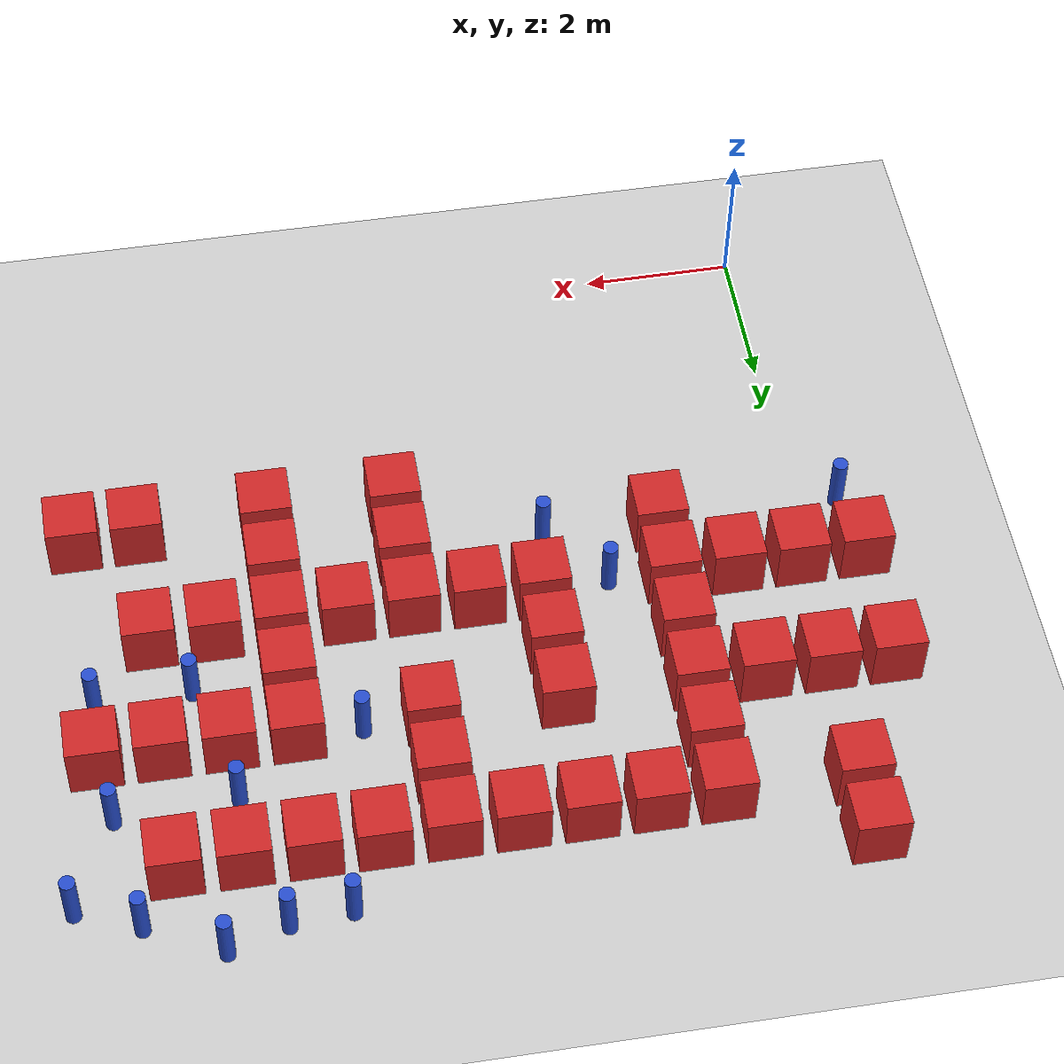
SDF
<sdf version="1.6">
 <world name="default">
  <model name="ground_plane">
   <static>1</static>
   <link name="link">
    <collision name="collision">
     <geometry><plane><normal>0 0 1</normal><size>100 100</size></plane></geometry>
     <surface><friction><ode><mu>100</mu><mu2>50</mu2></ode></friction></surface>
    </collision>
    <visual name="visual">
     <cast_shadows>0</cast_shadows>
     <geometry><plane><normal>0 0 1</normal><size>100 100</size></plane></geometry>
     <material>
      <script><uri>file://media/materials/scripts/gazebo.material</uri><name>Gazebo/Grey</name></script>
     </material>
    </visual>
   </link>
  </model>
  <model name="box_obstacle110">
   <static>0</static>
   <link name="link">
    <pose>0 0 0.1 0 -0 0</pose>
    <inertial>
     <mass>100</mass>
     <inertia>
      <ixx>0.166667</ixx>
      <ixy>0</ixy>
      <ixz>0</ixz>
      <iyy>0.166667</iyy>
      <iyz>0</iyz>
      <izz>0.166667</izz>
     </inertia>
    </inertial>
    <collision name="collision"><geometry><box><size>0.675 0.675 0.8</size></box></geometry></collision>
    <visual name="visual">
     <geometry><box><size>0.675 0.675 0.8</size></box></geometry>
     <material>
      <script><name>Gazebo/Red</name><uri>file://media/materials/scripts/gazebo.material</uri></script>
     </material>
    </visual>
   </link>
   <pose>-0.65097 5.29865 0.299996 4e-06 -0 0.001125</pose>
  </model>
  <model name="box_obstacle111">
   <static>0</static>
   <link name="link">
    <pose>0 0 0.1 0 -0 0</pose>
    <inertial>
     <mass>100</mass>
     <inertia>
      <ixx>0.166667</ixx>
      <ixy>0</ixy>
      <ixz>0</ixz>
      <iyy>0.166667</iyy>
      <iyz>0</iyz>
      <izz>0.166667</izz>
     </inertia>
    </inertial>
    <collision name="collision"><geometry><box><size>0.675 0.675 0.8</size></box></geometry></collision>
    <visual name="visual">
     <geometry><box><size>0.675 0.675 0.8</size></box></geometry>
     <material>
      <script><name>Gazebo/Red</name><uri>file://media/materials/scripts/gazebo.material</uri></script>
     </material>
    </visual>
   </link>
   <pose>-0.65097 6.99865 0.299996 4e-06 -0 0.001125</pose>
  </model>
  <model name="box_obstacle123">
   <static>0</static>
   <link name="link">
    <pose>0 0 0.1 0 -0 0</pose>
    <inertial>
     <mass>100</mass>
     <inertia>
      <ixx>0.166667</ixx>
      <ixy>0</ixy>
      <ixz>0</ixz>
      <iyy>0.166667</iyy>
      <iyz>0</iyz>
      <izz>0.166667</izz>
     </inertia>
    </inertial>
    <collision name="collision"><geometry><box><size>0.675 0.675 0.8</size></box></geometry></collision>
    <visual name="visual">
     <geometry><box><size>0.675 0.675 0.8</size></box></geometry>
     <material>
      <script><name>Gazebo/Red</name><uri>file://media/materials/scripts/gazebo.material</uri></script>
     </material>
    </visual>
   </link>
   <pose>0.19903 5.29865 0.299996 4e-06 -0 0.001125</pose>
  </model>
  <model name="box_obstacle124">
   <static>0</static>
   <link name="link">
    <pose>0 0 0.1 0 -0 0</pose>
    <inertial>
     <mass>100</mass>
     <inertia>
      <ixx>0.166667</ixx>
      <ixy>0</ixy>
      <ixz>0</ixz>
      <iyy>0.166667</iyy>
      <iyz>0</iyz>
      <izz>0.166667</izz>
     </inertia>
    </inertial>
    <collision name="collision"><geometry><box><size>0.675 0.675 0.8</size></box></geometry></collision>
    <visual name="visual">
     <geometry><box><size>0.675 0.675 0.8</size></box></geometry>
     <material>
      <script><name>Gazebo/Red</name><uri>file://media/materials/scripts/gazebo.material</uri></script>
     </material>
    </visual>
   </link>
   <pose>0.19903 6.99865 0.299996 4e-06 -0 0.001125</pose>
  </model>
  <model name="box_obstacle125">
   <static>0</static>
   <link name="link">
    <pose>0 0 0.1 0 -0 0</pose>
    <inertial>
     <mass>100</mass>
     <inertia>
      <ixx>0.166667</ixx>
      <ixy>0</ixy>
      <ixz>0</ixz>
      <iyy>0.166667</iyy>
      <iyz>0</iyz>
      <izz>0.166667</izz>
     </inertia>
    </inertial>
    <collision name="collision"><geometry><box><size>0.675 0.675 0.8</size></box></geometry></collision>
    <visual name="visual">
     <geometry><box><size>0.675 0.675 0.8</size></box></geometry>
     <material>
      <script><name>Gazebo/Red</name><uri>file://media/materials/scripts/gazebo.material</uri></script>
     </material>
    </visual>
   </link>
   <pose>0.19903 8.69865 0.299996 4e-06 -0 0.001125</pose>
  </model>
  <model name="box_obstacle126">
   <static>0</static>
   <link name="link">
    <pose>0 0 0.1 0 -0 0</pose>
    <inertial>
     <mass>100</mass>
     <inertia>
      <ixx>0.166667</ixx>
      <ixy>0</ixy>
      <ixz>0</ixz>
      <iyy>0.166667</iyy>
      <iyz>0</iyz>
      <izz>0.166667</izz>
     </inertia>
    </inertial>
    <collision name="collision"><geometry><box><size>0.675 0.675 0.8</size></box></geometry></collision>
    <visual name="visual">
     <geometry><box><size>0.675 0.675 0.8</size></box></geometry>
     <material>
      <script><name>Gazebo/Red</name><uri>file://media/materials/scripts/gazebo.material</uri></script>
     </material>
    </visual>
   </link>
   <pose>0.19903 9.54865 0.299996 4e-06 -0 0.001125</pose>
  </model>
  <model name="box_obstacle131">
   <static>0</static>
   <link name="link">
    <pose>0 0 0.1 0 -0 0</pose>
    <inertial>
     <mass>100</mass>
     <inertia>
      <ixx>0.166667</ixx>
      <ixy>0</ixy>
      <ixz>0</ixz>
      <iyy>0.166667</iyy>
      <iyz>0</iyz>
      <izz>0.166667</izz>
     </inertia>
    </inertial>
    <collision name="collision"><geometry><box><size>0.675 0.675 0.8</size></box></geometry></collision>
    <visual name="visual">
     <geometry><box><size>0.675 0.675 0.8</size></box></geometry>
     <material>
      <script><name>Gazebo/Red</name><uri>file://media/materials/scripts/gazebo.material</uri></script>
     </material>
    </visual>
   </link>
   <pose>1.04903 5.29865 0.299996 4e-06 -0 0.001125</pose>
  </model>
  <model name="box_obstacle132">
   <static>0</static>
   <link name="link">
    <pose>0 0 0.1 0 -0 0</pose>
    <inertial>
     <mass>100</mass>
     <inertia>
      <ixx>0.166667</ixx>
      <ixy>0</ixy>
      <ixz>0</ixz>
      <iyy>0.166667</iyy>
      <iyz>0</iyz>
      <izz>0.166667</izz>
     </inertia>
    </inertial>
    <collision name="collision"><geometry><box><size>0.675 0.675 0.8</size></box></geometry></collision>
    <visual name="visual">
     <geometry><box><size>0.675 0.675 0.8</size></box></geometry>
     <material>
      <script><name>Gazebo/Red</name><uri>file://media/materials/scripts/gazebo.material</uri></script>
     </material>
    </visual>
   </link>
   <pose>1.04903 6.99865 0.299996 4e-06 -0 0.001125</pose>
  </model>
  <model name="box_obstacle142">
   <static>0</static>
   <link name="link">
    <pose>0 0 0.1 0 -0 0</pose>
    <inertial>
     <mass>100</mass>
     <inertia>
      <ixx>0.166667</ixx>
      <ixy>0</ixy>
      <ixz>0</ixz>
      <iyy>0.166667</iyy>
      <iyz>0</iyz>
      <izz>0.166667</izz>
     </inertia>
    </inertial>
    <collision name="collision"><geometry><box><size>0.675 0.675 0.8</size></box></geometry></collision>
    <visual name="visual">
     <geometry><box><size>0.675 0.675 0.8</size></box></geometry>
     <material>
      <script><name>Gazebo/Red</name><uri>file://media/materials/scripts/gazebo.material</uri></script>
     </material>
    </visual>
   </link>
   <pose>1.89903 4.44865 0.299996 4e-06 -0 0.001125</pose>
  </model>
  <model name="box_obstacle143">
   <static>0</static>
   <link name="link">
    <pose>0 0 0.1 0 -0 0</pose>
    <inertial>
     <mass>100</mass>
     <inertia>
      <ixx>0.166667</ixx>
      <ixy>0</ixy>
      <ixz>0</ixz>
      <iyy>0.166667</iyy>
      <iyz>0</iyz>
      <izz>0.166667</izz>
     </inertia>
    </inertial>
    <collision name="collision"><geometry><box><size>0.675 0.675 0.8</size></box></geometry></collision>
    <visual name="visual">
     <geometry><box><size>0.675 0.675 0.8</size></box></geometry>
     <material>
      <script><name>Gazebo/Red</name><uri>file://media/materials/scripts/gazebo.material</uri></script>
     </material>
    </visual>
   </link>
   <pose>1.89903 5.29865 0.299996 4e-06 -0 0.001125</pose>
  </model>
  <model name="box_obstacle144">
   <static>0</static>
   <link name="link">
    <pose>0 0 0.1 0 -0 0</pose>
    <inertial>
     <mass>100</mass>
     <inertia>
      <ixx>0.166667</ixx>
      <ixy>0</ixy>
      <ixz>0</ixz>
      <iyy>0.166667</iyy>
      <iyz>0</iyz>
      <izz>0.166667</izz>
     </inertia>
    </inertial>
    <collision name="collision"><geometry><box><size>0.675 0.675 0.8</size></box></geometry></collision>
    <visual name="visual">
     <geometry><box><size>0.675 0.675 0.8</size></box></geometry>
     <material>
      <script><name>Gazebo/Red</name><uri>file://media/materials/scripts/gazebo.material</uri></script>
     </material>
    </visual>
   </link>
   <pose>1.89903 6.14865 0.299996 4e-06 -0 0.001125</pose>
  </model>
  <model name="box_obstacle145">
   <static>0</static>
   <link name="link">
    <pose>0 0 0.1 0 -0 0</pose>
    <inertial>
     <mass>100</mass>
     <inertia>
      <ixx>0.166667</ixx>
      <ixy>0</ixy>
      <ixz>0</ixz>
      <iyy>0.166667</iyy>
      <iyz>0</iyz>
      <izz>0.166667</izz>
     </inertia>
    </inertial>
    <collision name="collision"><geometry><box><size>0.675 0.675 0.8</size></box></geometry></collision>
    <visual name="visual">
     <geometry><box><size>0.675 0.675 0.8</size></box></geometry>
     <material>
      <script><name>Gazebo/Red</name><uri>file://media/materials/scripts/gazebo.material</uri></script>
     </material>
    </visual>
   </link>
   <pose>1.89903 6.99865 0.299996 4e-06 -0 0.001125</pose>
  </model>
  <model name="box_obstacle146">
   <static>0</static>
   <link name="link">
    <pose>0 0 0.1 0 -0 0</pose>
    <inertial>
     <mass>100</mass>
     <inertia>
      <ixx>0.166667</ixx>
      <ixy>0</ixy>
      <ixz>0</ixz>
      <iyy>0.166667</iyy>
      <iyz>0</iyz>
      <izz>0.166667</izz>
     </inertia>
    </inertial>
    <collision name="collision"><geometry><box><size>0.675 0.675 0.8</size></box></geometry></collision>
    <visual name="visual">
     <geometry><box><size>0.675 0.675 0.8</size></box></geometry>
     <material>
      <script><name>Gazebo/Red</name><uri>file://media/materials/scripts/gazebo.material</uri></script>
     </material>
    </visual>
   </link>
   <pose>1.89903 7.84865 0.299996 4e-06 -0 0.001125</pose>
  </model>
  <model name="box_obstacle147">
   <static>0</static>
   <link name="link">
    <pose>0 0 0.1 0 -0 0</pose>
    <inertial>
     <mass>100</mass>
     <inertia>
      <ixx>0.166667</ixx>
      <ixy>0</ixy>
      <ixz>0</ixz>
      <iyy>0.166667</iyy>
      <iyz>0</iyz>
      <izz>0.166667</izz>
     </inertia>
    </inertial>
    <collision name="collision"><geometry><box><size>0.675 0.675 0.8</size></box></geometry></collision>
    <visual name="visual">
     <geometry><box><size>0.675 0.675 0.8</size></box></geometry>
     <material>
      <script><name>Gazebo/Red</name><uri>file://media/materials/scripts/gazebo.material</uri></script>
     </material>
    </visual>
   </link>
   <pose>1.89903 8.69865 0.299996 4e-06 -0 0.001125</pose>
  </model>
  <model name="box_obstacle154">
   <static>0</static>
   <link name="link">
    <pose>0 0 0.1 0 -0 0</pose>
    <inertial>
     <mass>100</mass>
     <inertia>
      <ixx>0.166667</ixx>
      <ixy>0</ixy>
      <ixz>0</ixz>
      <iyy>0.166667</iyy>
      <iyz>0</iyz>
      <izz>0.166667</izz>
     </inertia>
    </inertial>
    <collision name="collision"><geometry><box><size>0.675 0.675 0.8</size></box></geometry></collision>
    <visual name="visual">
     <geometry><box><size>0.675 0.675 0.8</size></box></geometry>
     <material>
      <script><name>Gazebo/Red</name><uri>file://media/materials/scripts/gazebo.material</uri></script>
     </material>
    </visual>
   </link>
   <pose>2.74903 8.69865 0.299996 4e-06 -0 0.001125</pose>
  </model>
  <model name="box_obstacle167">
   <static>0</static>
   <link name="link">
    <pose>0 0 0.1 0 -0 0</pose>
    <inertial>
     <mass>100</mass>
     <inertia>
      <ixx>0.166667</ixx>
      <ixy>0</ixy>
      <ixz>0</ixz>
      <iyy>0.166667</iyy>
      <iyz>0</iyz>
      <izz>0.166667</izz>
     </inertia>
    </inertial>
    <collision name="collision"><geometry><box><size>0.675 0.675 0.8</size></box></geometry></collision>
    <visual name="visual">
     <geometry><box><size>0.675 0.675 0.8</size></box></geometry>
     <material>
      <script><name>Gazebo/Red</name><uri>file://media/materials/scripts/gazebo.material</uri></script>
     </material>
    </visual>
   </link>
   <pose>3.59903 5.29865 0.299996 4e-06 -0 0.001125</pose>
  </model>
  <model name="box_obstacle168">
   <static>0</static>
   <link name="link">
    <pose>0 0 0.1 0 -0 0</pose>
    <inertial>
     <mass>100</mass>
     <inertia>
      <ixx>0.166667</ixx>
      <ixy>0</ixy>
      <ixz>0</ixz>
      <iyy>0.166667</iyy>
      <iyz>0</iyz>
      <izz>0.166667</izz>
     </inertia>
    </inertial>
    <collision name="collision"><geometry><box><size>0.675 0.675 0.8</size></box></geometry></collision>
    <visual name="visual">
     <geometry><box><size>0.675 0.675 0.8</size></box></geometry>
     <material>
      <script><name>Gazebo/Red</name><uri>file://media/materials/scripts/gazebo.material</uri></script>
     </material>
    </visual>
   </link>
   <pose>3.59903 6.14865 0.299996 4e-06 -0 0.001125</pose>
  </model>
  <model name="box_obstacle169">
   <static>0</static>
   <link name="link">
    <pose>0 0 0.1 0 -0 0</pose>
    <inertial>
     <mass>100</mass>
     <inertia>
      <ixx>0.166667</ixx>
      <ixy>0</ixy>
      <ixz>0</ixz>
      <iyy>0.166667</iyy>
      <iyz>0</iyz>
      <izz>0.166667</izz>
     </inertia>
    </inertial>
    <collision name="collision"><geometry><box><size>0.675 0.675 0.8</size></box></geometry></collision>
    <visual name="visual">
     <geometry><box><size>0.675 0.675 0.8</size></box></geometry>
     <material>
      <script><name>Gazebo/Red</name><uri>file://media/materials/scripts/gazebo.material</uri></script>
     </material>
    </visual>
   </link>
   <pose>3.59903 6.99865 0.299996 4e-06 -0 0.001125</pose>
  </model>
  <model name="box_obstacle170">
   <static>0</static>
   <link name="link">
    <pose>0 0 0.1 0 -0 0</pose>
    <inertial>
     <mass>100</mass>
     <inertia>
      <ixx>0.166667</ixx>
      <ixy>0</ixy>
      <ixz>0</ixz>
      <iyy>0.166667</iyy>
      <iyz>0</iyz>
      <izz>0.166667</izz>
     </inertia>
    </inertial>
    <collision name="collision"><geometry><box><size>0.675 0.675 0.8</size></box></geometry></collision>
    <visual name="visual">
     <geometry><box><size>0.675 0.675 0.8</size></box></geometry>
     <material>
      <script><name>Gazebo/Red</name><uri>file://media/materials/scripts/gazebo.material</uri></script>
     </material>
    </visual>
   </link>
   <pose>3.59903 8.69865 0.299996 4e-06 -0 0.001125</pose>
  </model>
  <model name="box_obstacle175">
   <static>0</static>
   <link name="link">
    <pose>0 0 0.1 0 -0 0</pose>
    <inertial>
     <mass>100</mass>
     <inertia>
      <ixx>0.166667</ixx>
      <ixy>0</ixy>
      <ixz>0</ixz>
      <iyy>0.166667</iyy>
      <iyz>0</iyz>
      <izz>0.166667</izz>
     </inertia>
    </inertial>
    <collision name="collision"><geometry><box><size>0.675 0.675 0.8</size></box></geometry></collision>
    <visual name="visual">
     <geometry><box><size>0.675 0.675 0.8</size></box></geometry>
     <material>
      <script><name>Gazebo/Red</name><uri>file://media/materials/scripts/gazebo.material</uri></script>
     </material>
    </visual>
   </link>
   <pose>4.44903 5.29865 0.299996 4e-06 -0 0.001125</pose>
  </model>
  <model name="box_obstacle176">
   <static>0</static>
   <link name="link">
    <pose>0 0 0.1 0 -0 0</pose>
    <inertial>
     <mass>100</mass>
     <inertia>
      <ixx>0.166667</ixx>
      <ixy>0</ixy>
      <ixz>0</ixz>
      <iyy>0.166667</iyy>
      <iyz>0</iyz>
      <izz>0.166667</izz>
     </inertia>
    </inertial>
    <collision name="collision"><geometry><box><size>0.675 0.675 0.8</size></box></geometry></collision>
    <visual name="visual">
     <geometry><box><size>0.675 0.675 0.8</size></box></geometry>
     <material>
      <script><name>Gazebo/Red</name><uri>file://media/materials/scripts/gazebo.material</uri></script>
     </material>
    </visual>
   </link>
   <pose>4.44903 8.69865 0.299996 4e-06 -0 0.001125</pose>
  </model>
  <model name="box_obstacle185">
   <static>0</static>
   <link name="link">
    <pose>0 0 0.1 0 -0 0</pose>
    <inertial>
     <mass>100</mass>
     <inertia>
      <ixx>0.166667</ixx>
      <ixy>0</ixy>
      <ixz>0</ixz>
      <iyy>0.166667</iyy>
      <iyz>0</iyz>
      <izz>0.166667</izz>
     </inertia>
    </inertial>
    <collision name="collision"><geometry><box><size>0.675 0.675 0.8</size></box></geometry></collision>
    <visual name="visual">
     <geometry><box><size>0.675 0.675 0.8</size></box></geometry>
     <material>
      <script><name>Gazebo/Red</name><uri>file://media/materials/scripts/gazebo.material</uri></script>
     </material>
    </visual>
   </link>
   <pose>5.29903 3.59865 0.299996 4e-06 -0 0.001125</pose>
  </model>
  <model name="box_obstacle186">
   <static>0</static>
   <link name="link">
    <pose>0 0 0.1 0 -0 0</pose>
    <inertial>
     <mass>100</mass>
     <inertia>
      <ixx>0.166667</ixx>
      <ixy>0</ixy>
      <ixz>0</ixz>
      <iyy>0.166667</iyy>
      <iyz>0</iyz>
      <izz>0.166667</izz>
     </inertia>
    </inertial>
    <collision name="collision"><geometry><box><size>0.675 0.675 0.8</size></box></geometry></collision>
    <visual name="visual">
     <geometry><box><size>0.675 0.675 0.8</size></box></geometry>
     <material>
      <script><name>Gazebo/Red</name><uri>file://media/materials/scripts/gazebo.material</uri></script>
     </material>
    </visual>
   </link>
   <pose>5.29903 4.44865 0.299996 4e-06 -0 0.001125</pose>
  </model>
  <model name="box_obstacle187">
   <static>0</static>
   <link name="link">
    <pose>0 0 0.1 0 -0 0</pose>
    <inertial>
     <mass>100</mass>
     <inertia>
      <ixx>0.166667</ixx>
      <ixy>0</ixy>
      <ixz>0</ixz>
      <iyy>0.166667</iyy>
      <iyz>0</iyz>
      <izz>0.166667</izz>
     </inertia>
    </inertial>
    <collision name="collision"><geometry><box><size>0.675 0.675 0.8</size></box></geometry></collision>
    <visual name="visual">
     <geometry><box><size>0.675 0.675 0.8</size></box></geometry>
     <material>
      <script><name>Gazebo/Red</name><uri>file://media/materials/scripts/gazebo.material</uri></script>
     </material>
    </visual>
   </link>
   <pose>5.29903 5.29865 0.299996 4e-06 -0 0.001125</pose>
  </model>
  <model name="box_obstacle188">
   <static>0</static>
   <link name="link">
    <pose>0 0 0.1 0 -0 0</pose>
    <inertial>
     <mass>100</mass>
     <inertia>
      <ixx>0.166667</ixx>
      <ixy>0</ixy>
      <ixz>0</ixz>
      <iyy>0.166667</iyy>
      <iyz>0</iyz>
      <izz>0.166667</izz>
     </inertia>
    </inertial>
    <collision name="collision"><geometry><box><size>0.675 0.675 0.8</size></box></geometry></collision>
    <visual name="visual">
     <geometry><box><size>0.675 0.675 0.8</size></box></geometry>
     <material>
      <script><name>Gazebo/Red</name><uri>file://media/materials/scripts/gazebo.material</uri></script>
     </material>
    </visual>
   </link>
   <pose>5.29903 6.99865 0.299996 4e-06 -0 0.001125</pose>
  </model>
  <model name="box_obstacle189">
   <static>0</static>
   <link name="link">
    <pose>0 0 0.1 0 -0 0</pose>
    <inertial>
     <mass>100</mass>
     <inertia>
      <ixx>0.166667</ixx>
      <ixy>0</ixy>
      <ixz>0</ixz>
      <iyy>0.166667</iyy>
      <iyz>0</iyz>
      <izz>0.166667</izz>
     </inertia>
    </inertial>
    <collision name="collision"><geometry><box><size>0.675 0.675 0.8</size></box></geometry></collision>
    <visual name="visual">
     <geometry><box><size>0.675 0.675 0.8</size></box></geometry>
     <material>
      <script><name>Gazebo/Red</name><uri>file://media/materials/scripts/gazebo.material</uri></script>
     </material>
    </visual>
   </link>
   <pose>5.29903 7.84865 0.299996 4e-06 -0 0.001125</pose>
  </model>
  <model name="box_obstacle190">
   <static>0</static>
   <link name="link">
    <pose>0 0 0.1 0 -0 0</pose>
    <inertial>
     <mass>100</mass>
     <inertia>
      <ixx>0.166667</ixx>
      <ixy>0</ixy>
      <ixz>0</ixz>
      <iyy>0.166667</iyy>
      <iyz>0</iyz>
      <izz>0.166667</izz>
     </inertia>
    </inertial>
    <collision name="collision"><geometry><box><size>0.675 0.675 0.8</size></box></geometry></collision>
    <visual name="visual">
     <geometry><box><size>0.675 0.675 0.8</size></box></geometry>
     <material>
      <script><name>Gazebo/Red</name><uri>file://media/materials/scripts/gazebo.material</uri></script>
     </material>
    </visual>
   </link>
   <pose>5.29903 8.69865 0.299996 4e-06 -0 0.001125</pose>
  </model>
  <model name="box_obstacle197">
   <static>0</static>
   <link name="link">
    <pose>0 0 0.1 0 -0 0</pose>
    <inertial>
     <mass>100</mass>
     <inertia>
      <ixx>0.166667</ixx>
      <ixy>0</ixy>
      <ixz>0</ixz>
      <iyy>0.166667</iyy>
      <iyz>0</iyz>
      <izz>0.166667</izz>
     </inertia>
    </inertial>
    <collision name="collision"><geometry><box><size>0.675 0.675 0.8</size></box></geometry></collision>
    <visual name="visual">
     <geometry><box><size>0.675 0.675 0.8</size></box></geometry>
     <material>
      <script><name>Gazebo/Red</name><uri>file://media/materials/scripts/gazebo.material</uri></script>
     </material>
    </visual>
   </link>
   <pose>6.14903 5.29865 0.299996 4e-06 -0 0.001125</pose>
  </model>
  <model name="box_obstacle198">
   <static>0</static>
   <link name="link">
    <pose>0 0 0.1 0 -0 0</pose>
    <inertial>
     <mass>100</mass>
     <inertia>
      <ixx>0.166667</ixx>
      <ixy>0</ixy>
      <ixz>0</ixz>
      <iyy>0.166667</iyy>
      <iyz>0</iyz>
      <izz>0.166667</izz>
     </inertia>
    </inertial>
    <collision name="collision"><geometry><box><size>0.675 0.675 0.8</size></box></geometry></collision>
    <visual name="visual">
     <geometry><box><size>0.675 0.675 0.8</size></box></geometry>
     <material>
      <script><name>Gazebo/Red</name><uri>file://media/materials/scripts/gazebo.material</uri></script>
     </material>
    </visual>
   </link>
   <pose>6.14903 8.69865 0.299996 4e-06 -0 0.001125</pose>
  </model>
  <model name="box_obstacle208">
   <static>0</static>
   <link name="link">
    <pose>0 0 0.1 0 -0 0</pose>
    <inertial>
     <mass>100</mass>
     <inertia>
      <ixx>0.166667</ixx>
      <ixy>0</ixy>
      <ixz>0</ixz>
      <iyy>0.166667</iyy>
      <iyz>0</iyz>
      <izz>0.166667</izz>
     </inertia>
    </inertial>
    <collision name="collision"><geometry><box><size>0.675 0.675 0.8</size></box></geometry></collision>
    <visual name="visual">
     <geometry><box><size>0.675 0.675 0.8</size></box></geometry>
     <material>
      <script><name>Gazebo/Red</name><uri>file://media/materials/scripts/gazebo.material</uri></script>
     </material>
    </visual>
   </link>
   <pose>6.99903 3.59865 0.299996 4e-06 -0 0.001125</pose>
  </model>
  <model name="box_obstacle209">
   <static>0</static>
   <link name="link">
    <pose>0 0 0.1 0 -0 0</pose>
    <inertial>
     <mass>100</mass>
     <inertia>
      <ixx>0.166667</ixx>
      <ixy>0</ixy>
      <ixz>0</ixz>
      <iyy>0.166667</iyy>
      <iyz>0</iyz>
      <izz>0.166667</izz>
     </inertia>
    </inertial>
    <collision name="collision"><geometry><box><size>0.675 0.675 0.8</size></box></geometry></collision>
    <visual name="visual">
     <geometry><box><size>0.675 0.675 0.8</size></box></geometry>
     <material>
      <script><name>Gazebo/Red</name><uri>file://media/materials/scripts/gazebo.material</uri></script>
     </material>
    </visual>
   </link>
   <pose>6.99903 4.44865 0.299996 4e-06 -0 0.001125</pose>
  </model>
  <model name="box_obstacle210">
   <static>0</static>
   <link name="link">
    <pose>0 0 0.1 0 -0 0</pose>
    <inertial>
     <mass>100</mass>
     <inertia>
      <ixx>0.166667</ixx>
      <ixy>0</ixy>
      <ixz>0</ixz>
      <iyy>0.166667</iyy>
      <iyz>0</iyz>
      <izz>0.166667</izz>
     </inertia>
    </inertial>
    <collision name="collision"><geometry><box><size>0.675 0.675 0.8</size></box></geometry></collision>
    <visual name="visual">
     <geometry><box><size>0.675 0.675 0.8</size></box></geometry>
     <material>
      <script><name>Gazebo/Red</name><uri>file://media/materials/scripts/gazebo.material</uri></script>
     </material>
    </visual>
   </link>
   <pose>6.99903 5.29865 0.299996 4e-06 -0 0.001125</pose>
  </model>
  <model name="box_obstacle211">
   <static>0</static>
   <link name="link">
    <pose>0 0 0.1 0 -0 0</pose>
    <inertial>
     <mass>100</mass>
     <inertia>
      <ixx>0.166667</ixx>
      <ixy>0</ixy>
      <ixz>0</ixz>
      <iyy>0.166667</iyy>
      <iyz>0</iyz>
      <izz>0.166667</izz>
     </inertia>
    </inertial>
    <collision name="collision"><geometry><box><size>0.675 0.675 0.8</size></box></geometry></collision>
    <visual name="visual">
     <geometry><box><size>0.675 0.675 0.8</size></box></geometry>
     <material>
      <script><name>Gazebo/Red</name><uri>file://media/materials/scripts/gazebo.material</uri></script>
     </material>
    </visual>
   </link>
   <pose>6.99903 6.14865 0.299996 4e-06 -0 0.001125</pose>
  </model>
  <model name="box_obstacle212">
   <static>0</static>
   <link name="link">
    <pose>0 0 0.1 0 -0 0</pose>
    <inertial>
     <mass>100</mass>
     <inertia>
      <ixx>0.166667</ixx>
      <ixy>0</ixy>
      <ixz>0</ixz>
      <iyy>0.166667</iyy>
      <iyz>0</iyz>
      <izz>0.166667</izz>
     </inertia>
    </inertial>
    <collision name="collision"><geometry><box><size>0.675 0.675 0.8</size></box></geometry></collision>
    <visual name="visual">
     <geometry><box><size>0.675 0.675 0.8</size></box></geometry>
     <material>
      <script><name>Gazebo/Red</name><uri>file://media/materials/scripts/gazebo.material</uri></script>
     </material>
    </visual>
   </link>
   <pose>6.99903 6.99865 0.299996 4e-06 -0 0.001125</pose>
  </model>
  <model name="box_obstacle213">
   <static>0</static>
   <link name="link">
    <pose>0 0 0.1 0 -0 0</pose>
    <inertial>
     <mass>100</mass>
     <inertia>
      <ixx>0.166667</ixx>
      <ixy>0</ixy>
      <ixz>0</ixz>
      <iyy>0.166667</iyy>
      <iyz>0</iyz>
      <izz>0.166667</izz>
     </inertia>
    </inertial>
    <collision name="collision"><geometry><box><size>0.675 0.675 0.8</size></box></geometry></collision>
    <visual name="visual">
     <geometry><box><size>0.675 0.675 0.8</size></box></geometry>
     <material>
      <script><name>Gazebo/Red</name><uri>file://media/materials/scripts/gazebo.material</uri></script>
     </material>
    </visual>
   </link>
   <pose>6.99903 8.69865 0.299996 4e-06 -0 0.001125</pose>
  </model>
  <model name="box_obstacle219">
   <static>0</static>
   <link name="link">
    <pose>0 0 0.1 0 -0 0</pose>
    <inertial>
     <mass>100</mass>
     <inertia>
      <ixx>0.166667</ixx>
      <ixy>0</ixy>
      <ixz>0</ixz>
      <iyy>0.166667</iyy>
      <iyz>0</iyz>
      <izz>0.166667</izz>
     </inertia>
    </inertial>
    <collision name="collision"><geometry><box><size>0.675 0.675 0.8</size></box></geometry></collision>
    <visual name="visual">
     <geometry><box><size>0.675 0.675 0.8</size></box></geometry>
     <material>
      <script><name>Gazebo/Red</name><uri>file://media/materials/scripts/gazebo.material</uri></script>
     </material>
    </visual>
   </link>
   <pose>7.84903 5.29865 0.299996 4e-06 -0 0.001125</pose>
  </model>
  <model name="box_obstacle220">
   <static>0</static>
   <link name="link">
    <pose>0 0 0.1 0 -0 0</pose>
    <inertial>
     <mass>100</mass>
     <inertia>
      <ixx>0.166667</ixx>
      <ixy>0</ixy>
      <ixz>0</ixz>
      <iyy>0.166667</iyy>
      <iyz>0</iyz>
      <izz>0.166667</izz>
     </inertia>
    </inertial>
    <collision name="collision"><geometry><box><size>0.675 0.675 0.8</size></box></geometry></collision>
    <visual name="visual">
     <geometry><box><size>0.675 0.675 0.8</size></box></geometry>
     <material>
      <script><name>Gazebo/Red</name><uri>file://media/materials/scripts/gazebo.material</uri></script>
     </material>
    </visual>
   </link>
   <pose>7.84903 6.99865 0.299996 4e-06 -0 0.001125</pose>
  </model>
  <model name="box_obstacle221">
   <static>0</static>
   <link name="link">
    <pose>0 0 0.1 0 -0 0</pose>
    <inertial>
     <mass>100</mass>
     <inertia>
      <ixx>0.166667</ixx>
      <ixy>0</ixy>
      <ixz>0</ixz>
      <iyy>0.166667</iyy>
      <iyz>0</iyz>
      <izz>0.166667</izz>
     </inertia>
    </inertial>
    <collision name="collision"><geometry><box><size>0.675 0.675 0.8</size></box></geometry></collision>
    <visual name="visual">
     <geometry><box><size>0.675 0.675 0.8</size></box></geometry>
     <material>
      <script><name>Gazebo/Red</name><uri>file://media/materials/scripts/gazebo.material</uri></script>
     </material>
    </visual>
   </link>
   <pose>7.84903 8.69865 0.299996 4e-06 -0 0.001125</pose>
  </model>
  <model name="box_obstacle233">
   <static>0</static>
   <link name="link">
    <pose>0 0 0.1 0 -0 0</pose>
    <inertial>
     <mass>100</mass>
     <inertia>
      <ixx>0.166667</ixx>
      <ixy>0</ixy>
      <ixz>0</ixz>
      <iyy>0.166667</iyy>
      <iyz>0</iyz>
      <izz>0.166667</izz>
     </inertia>
    </inertial>
    <collision name="collision"><geometry><box><size>0.675 0.675 0.8</size></box></geometry></collision>
    <visual name="visual">
     <geometry><box><size>0.675 0.675 0.8</size></box></geometry>
     <material>
      <script><name>Gazebo/Red</name><uri>file://media/materials/scripts/gazebo.material</uri></script>
     </material>
    </visual>
   </link>
   <pose>8.69903 3.59865 0.299996 4e-06 -0 0.001125</pose>
  </model>
  <model name="box_obstacle234">
   <static>0</static>
   <link name="link">
    <pose>0 0 0.1 0 -0 0</pose>
    <inertial>
     <mass>100</mass>
     <inertia>
      <ixx>0.166667</ixx>
      <ixy>0</ixy>
      <ixz>0</ixz>
      <iyy>0.166667</iyy>
      <iyz>0</iyz>
      <izz>0.166667</izz>
     </inertia>
    </inertial>
    <collision name="collision"><geometry><box><size>0.675 0.675 0.8</size></box></geometry></collision>
    <visual name="visual">
     <geometry><box><size>0.675 0.675 0.8</size></box></geometry>
     <material>
      <script><name>Gazebo/Red</name><uri>file://media/materials/scripts/gazebo.material</uri></script>
     </material>
    </visual>
   </link>
   <pose>8.69903 5.29865 0.299996 4e-06 -0 0.001125</pose>
  </model>
  <model name="box_obstacle235">
   <static>0</static>
   <link name="link">
    <pose>0 0 0.1 0 -0 0</pose>
    <inertial>
     <mass>100</mass>
     <inertia>
      <ixx>0.166667</ixx>
      <ixy>0</ixy>
      <ixz>0</ixz>
      <iyy>0.166667</iyy>
      <iyz>0</iyz>
      <izz>0.166667</izz>
     </inertia>
    </inertial>
    <collision name="collision"><geometry><box><size>0.675 0.675 0.8</size></box></geometry></collision>
    <visual name="visual">
     <geometry><box><size>0.675 0.675 0.8</size></box></geometry>
     <material>
      <script><name>Gazebo/Red</name><uri>file://media/materials/scripts/gazebo.material</uri></script>
     </material>
    </visual>
   </link>
   <pose>8.69903 6.99865 0.299996 4e-06 -0 0.001125</pose>
  </model>
  <model name="box_obstacle236">
   <static>0</static>
   <link name="link">
    <pose>0 0 0.1 0 -0 0</pose>
    <inertial>
     <mass>100</mass>
     <inertia>
      <ixx>0.166667</ixx>
      <ixy>0</ixy>
      <ixz>0</ixz>
      <iyy>0.166667</iyy>
      <iyz>0</iyz>
      <izz>0.166667</izz>
     </inertia>
    </inertial>
    <collision name="collision"><geometry><box><size>0.675 0.675 0.8</size></box></geometry></collision>
    <visual name="visual">
     <geometry><box><size>0.675 0.675 0.8</size></box></geometry>
     <material>
      <script><name>Gazebo/Red</name><uri>file://media/materials/scripts/gazebo.material</uri></script>
     </material>
    </visual>
   </link>
   <pose>8.69903 8.69865 0.299996 4e-06 -0 0.001125</pose>
  </model>
  <model name="box_obstacle238">
   <static>0</static>
   <link name="link">
    <pose>0 0 0.1 0 -0 0</pose>
    <inertial>
     <mass>100</mass>
     <inertia>
      <ixx>0.166667</ixx>
      <ixy>0</ixy>
      <ixz>0</ixz>
      <iyy>0.166667</iyy>
      <iyz>0</iyz>
      <izz>0.166667</izz>
     </inertia>
    </inertial>
    <collision name="collision"><geometry><box><size>0.675 0.675 0.8</size></box></geometry></collision>
    <visual name="visual">
     <geometry><box><size>0.675 0.675 0.8</size></box></geometry>
     <material>
      <script><name>Gazebo/Red</name><uri>file://media/materials/scripts/gazebo.material</uri></script>
     </material>
    </visual>
   </link>
   <pose>9.53696 3.59889 0.3 7e-06 -0 -0.001347</pose>
  </model>
  <model name="box_obstacle239">
   <static>0</static>
   <link name="link">
    <pose>0 0 0.1 0 -0 0</pose>
    <inertial>
     <mass>100</mass>
     <inertia>
      <ixx>0.166667</ixx>
      <ixy>0</ixy>
      <ixz>0</ixz>
      <iyy>0.166667</iyy>
      <iyz>0</iyz>
      <izz>0.166667</izz>
     </inertia>
    </inertial>
    <collision name="collision"><geometry><box><size>0.675 0.675 0.8</size></box></geometry></collision>
    <visual name="visual">
     <geometry><box><size>0.675 0.675 0.8</size></box></geometry>
     <material>
      <script><name>Gazebo/Red</name><uri>file://media/materials/scripts/gazebo.material</uri></script>
     </material>
    </visual>
   </link>
   <pose>9.53694 6.9986 0.299996 4e-06 -0 -0.001023</pose>
  </model>
  <model name="cylinder_obstacle12">
   <static>0</static>
   <link name="link">
    <pose>0 0 1 0 -0 0</pose>
    <inertial>
     <mass>100</mass>
     <inertia>
      <ixx>0.166667</ixx>
      <ixy>0</ixy>
      <ixz>0</ixz>
      <iyy>0.166667</iyy>
      <iyz>0</iyz>
      <izz>0.166667</izz>
     </inertia>
    </inertial>
    <collision name="collision">
     <geometry><cylinder><radius>0.1</radius><length>0.8</length></cylinder></geometry>
    </collision>
    <visual name="visual">
     <geometry><cylinder><radius>0.1</radius><length>0.8</length></cylinder></geometry>
     <material>
      <script><name>Gazebo/Blue</name><uri>file://media/materials/scripts/gazebo.material</uri></script>
     </material>
    </visual>
   </link>
   <pose>9.47586 6.15707 -0.6 3e-06 1e-06 0.003884</pose>
  </model>
  <model name="cylinder_obstacle29">
   <static>0</static>
   <link name="link">
    <pose>0 0 1 0 -0 0</pose>
    <inertial>
     <mass>100</mass>
     <inertia>
      <ixx>0.166667</ixx>
      <ixy>0</ixy>
      <ixz>0</ixz>
      <iyy>0.166667</iyy>
      <iyz>0</iyz>
      <izz>0.166667</izz>
     </inertia>
    </inertial>
    <collision name="collision">
     <geometry><cylinder><radius>0.1</radius><length>0.8</length></cylinder></geometry>
    </collision>
    <visual name="visual">
     <geometry><cylinder><radius>0.1</radius><length>0.8</length></cylinder></geometry>
     <material>
      <script><name>Gazebo/Blue</name><uri>file://media/materials/scripts/gazebo.material</uri></script>
     </material>
    </visual>
   </link>
   <pose>6.16247 7.02571 -0.6 3e-06 1e-06 0.003884</pose>
  </model>
  <model name="cylinder_obstacle37">
   <static>0</static>
   <link name="link">
    <pose>0 0 1 0 -0 0</pose>
    <inertial>
     <mass>100</mass>
     <inertia>
      <ixx>0.166667</ixx>
      <ixy>0</ixy>
      <ixz>0</ixz>
      <iyy>0.166667</iyy>
      <iyz>0</iyz>
      <izz>0.166667</izz>
     </inertia>
    </inertial>
    <collision name="collision">
     <geometry><cylinder><radius>0.1</radius><length>0.8</length></cylinder></geometry>
    </collision>
    <visual name="visual">
     <geometry><cylinder><radius>0.1</radius><length>0.8</length></cylinder></geometry>
     <material>
      <script><name>Gazebo/Blue</name><uri>file://media/materials/scripts/gazebo.material</uri></script>
     </material>
    </visual>
   </link>
   <pose>2.68581 5.23841 -0.6 3e-06 1e-06 0.003884</pose>
  </model>
  <model name="cylinder_obstacle38">
   <static>0</static>
   <link name="link">
    <pose>0 0 1 0 -0 0</pose>
    <inertial>
     <mass>100</mass>
     <inertia>
      <ixx>0.166667</ixx>
      <ixy>0</ixy>
      <ixz>0</ixz>
      <iyy>0.166667</iyy>
      <iyz>0</iyz>
      <izz>0.166667</izz>
     </inertia>
    </inertial>
    <collision name="collision">
     <geometry><cylinder><radius>0.1</radius><length>0.8</length></cylinder></geometry>
    </collision>
    <visual name="visual">
     <geometry><cylinder><radius>0.1</radius><length>0.8</length></cylinder></geometry>
     <material>
      <script><name>Gazebo/Blue</name><uri>file://media/materials/scripts/gazebo.material</uri></script>
     </material>
    </visual>
   </link>
   <pose>3.41413 4.36353 -0.6 3e-06 1e-06 0.003884</pose>
  </model>
  <model name="cylinder_obstacle46">
   <static>0</static>
   <link name="link">
    <pose>0 0 1 0 -0 0</pose>
    <inertial>
     <mass>100</mass>
     <inertia>
      <ixx>0.166667</ixx>
      <ixy>0</ixy>
      <ixz>0</ixz>
      <iyy>0.166667</iyy>
      <iyz>0</iyz>
      <izz>0.166667</izz>
     </inertia>
    </inertial>
    <collision name="collision">
     <geometry><cylinder><radius>0.1</radius><length>0.8</length></cylinder></geometry>
    </collision>
    <visual name="visual">
     <geometry><cylinder><radius>0.1</radius><length>0.8</length></cylinder></geometry>
     <material>
      <script><name>Gazebo/Blue</name><uri>file://media/materials/scripts/gazebo.material</uri></script>
     </material>
    </visual>
   </link>
   <pose>7.4137 9.66487 -0.6 3e-06 1e-06 0.003884</pose>
  </model>
  <model name="cylinder_obstacle51">
   <static>0</static>
   <link name="link">
    <pose>0 0 1 0 -0 0</pose>
    <inertial>
     <mass>100</mass>
     <inertia>
      <ixx>0.166667</ixx>
      <ixy>0</ixy>
      <ixz>0</ixz>
      <iyy>0.166667</iyy>
      <iyz>0</iyz>
      <izz>0.166667</izz>
     </inertia>
    </inertial>
    <collision name="collision">
     <geometry><cylinder><radius>0.1</radius><length>0.8</length></cylinder></geometry>
    </collision>
    <visual name="visual">
     <geometry><cylinder><radius>0.1</radius><length>0.8</length></cylinder></geometry>
     <material>
      <script><name>Gazebo/Blue</name><uri>file://media/materials/scripts/gazebo.material</uri></script>
     </material>
    </visual>
   </link>
   <pose>6.62107 9.60007 -0.6 3e-06 1e-06 0.003884</pose>
  </model>
  <model name="cylinder_obstacle55">
   <static>0</static>
   <link name="link">
    <pose>0 0 1 0 -0 0</pose>
    <inertial>
     <mass>100</mass>
     <inertia>
      <ixx>0.166667</ixx>
      <ixy>0</ixy>
      <ixz>0</ixz>
      <iyy>0.166667</iyy>
      <iyz>0</iyz>
      <izz>0.166667</izz>
     </inertia>
    </inertial>
    <collision name="collision">
     <geometry><cylinder><radius>0.1</radius><length>0.8</length></cylinder></geometry>
    </collision>
    <visual name="visual">
     <geometry><cylinder><radius>0.1</radius><length>0.8</length></cylinder></geometry>
     <material>
      <script><name>Gazebo/Blue</name><uri>file://media/materials/scripts/gazebo.material</uri></script>
     </material>
    </visual>
   </link>
   <pose>9.1632 9.4332 -0.6 3e-06 1e-06 0.003884</pose>
  </model>
  <model name="cylinder_obstacle68">
   <static>0</static>
   <link name="link">
    <pose>0 0 1 0 -0 0</pose>
    <inertial>
     <mass>100</mass>
     <inertia>
      <ixx>0.166667</ixx>
      <ixy>0</ixy>
      <ixz>0</ixz>
      <iyy>0.166667</iyy>
      <iyz>0</iyz>
      <izz>0.166667</izz>
     </inertia>
    </inertial>
    <collision name="collision">
     <geometry><cylinder><radius>0.1</radius><length>0.8</length></cylinder></geometry>
    </collision>
    <visual name="visual">
     <geometry><cylinder><radius>0.1</radius><length>0.8</length></cylinder></geometry>
     <material>
      <script><name>Gazebo/Blue</name><uri>file://media/materials/scripts/gazebo.material</uri></script>
     </material>
    </visual>
   </link>
   <pose>9.38426 7.87371 -0.6 3e-06 1e-06 0.003884</pose>
  </model>
  <model name="cylinder_obstacle75">
   <static>0</static>
   <link name="link">
    <pose>0 0 1 0 -0 0</pose>
    <inertial>
     <mass>100</mass>
     <inertia>
      <ixx>0.166667</ixx>
      <ixy>0</ixy>
      <ixz>0</ixz>
      <iyy>0.166667</iyy>
      <iyz>0</iyz>
      <izz>0.166667</izz>
     </inertia>
    </inertial>
    <collision name="collision">
     <geometry><cylinder><radius>0.1</radius><length>0.8</length></cylinder></geometry>
    </collision>
    <visual name="visual">
     <geometry><cylinder><radius>0.1</radius><length>0.8</length></cylinder></geometry>
     <material>
      <script><name>Gazebo/Blue</name><uri>file://media/materials/scripts/gazebo.material</uri></script>
     </material>
    </visual>
   </link>
   <pose>8.19166 9.91637 -0.6 3e-06 1e-06 0.003884</pose>
  </model>
  <model name="cylinder_obstacle85">
   <static>0</static>
   <link name="link">
    <pose>0 0 1 0 -0 0</pose>
    <inertial>
     <mass>100</mass>
     <inertia>
      <ixx>0.166667</ixx>
      <ixy>0</ixy>
      <ixz>0</ixz>
      <iyy>0.166667</iyy>
      <iyz>0</iyz>
      <izz>0.166667</izz>
     </inertia>
    </inertial>
    <collision name="collision">
     <geometry><cylinder><radius>0.1</radius><length>0.8</length></cylinder></geometry>
    </collision>
    <visual name="visual">
     <geometry><cylinder><radius>0.1</radius><length>0.8</length></cylinder></geometry>
     <material>
      <script><name>Gazebo/Blue</name><uri>file://media/materials/scripts/gazebo.material</uri></script>
     </material>
    </visual>
   </link>
   <pose>8.22958 6.12737 -0.6 3e-06 1e-06 0.003884</pose>
  </model>
  <model name="cylinder_obstacle88">
   <static>0</static>
   <link name="link">
    <pose>0 0 1 0 -0 0</pose>
    <inertial>
     <mass>100</mass>
     <inertia>
      <ixx>0.166667</ixx>
      <ixy>0</ixy>
      <ixz>0</ixz>
      <iyy>0.166667</iyy>
      <iyz>0</iyz>
      <izz>0.166667</izz>
     </inertia>
    </inertial>
    <collision name="collision">
     <geometry><cylinder><radius>0.1</radius><length>0.8</length></cylinder></geometry>
    </collision>
    <visual name="visual">
     <geometry><cylinder><radius>0.1</radius><length>0.8</length></cylinder></geometry>
     <material>
      <script><name>Gazebo/Blue</name><uri>file://media/materials/scripts/gazebo.material</uri></script>
     </material>
    </visual>
   </link>
   <pose>9.96776 9.10041 -0.6 3e-06 1e-06 0.003884</pose>
  </model>
  <model name="cylinder_obstacle95">
   <static>0</static>
   <link name="link">
    <pose>0 0 1 0 -0 0</pose>
    <inertial>
     <mass>100</mass>
     <inertia>
      <ixx>0.166667</ixx>
      <ixy>0</ixy>
      <ixz>0</ixz>
      <iyy>0.166667</iyy>
      <iyz>0</iyz>
      <izz>0.166667</izz>
     </inertia>
    </inertial>
    <collision name="collision">
     <geometry><cylinder><radius>0.1</radius><length>0.8</length></cylinder></geometry>
    </collision>
    <visual name="visual">
     <geometry><cylinder><radius>0.1</radius><length>0.8</length></cylinder></geometry>
     <material>
      <script><name>Gazebo/Blue</name><uri>file://media/materials/scripts/gazebo.material</uri></script>
     </material>
    </visual>
   </link>
   <pose>-0.561409 4.36294 -0.6 3e-06 1e-06 0.003884</pose>
  </model>
  <model name="cylinder_obstacle99">
   <static>0</static>
   <link name="link">
    <pose>0 0 1 0 -0 0</pose>
    <inertial>
     <mass>100</mass>
     <inertia>
      <ixx>0.166667</ixx>
      <ixy>0</ixy>
      <ixz>0</ixz>
      <iyy>0.166667</iyy>
      <iyz>0</iyz>
      <izz>0.166667</izz>
     </inertia>
    </inertial>
    <collision name="collision">
     <geometry><cylinder><radius>0.1</radius><length>0.8</length></cylinder></geometry>
    </collision>
    <visual name="visual">
     <geometry><cylinder><radius>0.1</radius><length>0.8</length></cylinder></geometry>
     <material>
      <script><name>Gazebo/Blue</name><uri>file://media/materials/scripts/gazebo.material</uri></script>
     </material>
    </visual>
   </link>
   <pose>7.81291 7.79906 -0.6 3e-06 1e-06 0.003884</pose>
  </model>
 </world>
</sdf>
